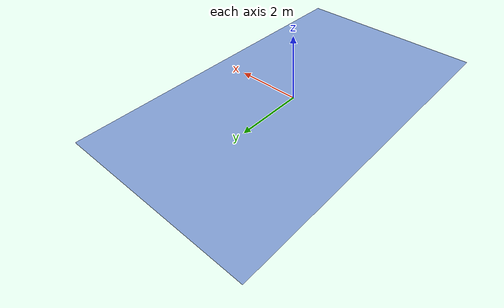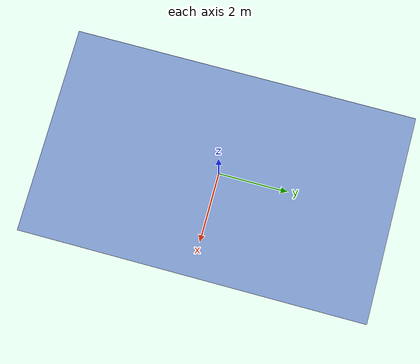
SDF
<?xml version='1.0'?>
<sdf version='1.5'>
  <model name='exploration_area'>
    <link name='link'>
      <pose frame=''>0 0 0 0 -0 0</pose>
      <inertial>
        <mass>1</mass>
        <inertia>
          <ixx>0.145833</ixx>
          <ixy>0</ixy>
          <ixz>0</ixz>
          <iyy>0.145833</iyy>
          <iyz>0</iyz>
          <izz>0.125</izz>
        </inertia>
        <pose frame=''>0 0 0 0 -0 0</pose>
      </inertial>
      <self_collide>0</self_collide>
      <kinematic>0</kinematic>
      <gravity>1</gravity>
      <visual name='visual'>
        <geometry>
          <box>
		<size>6 10 .005</size>
          </box>
        </geometry>
        <material>
          <script>
            <name>Gazebo/blue</name>
            <uri>file://media/materials/scripts/gazebo.material</uri>
          </script>
          <ambient>0.3 0.3 0.3 1</ambient>
          <diffuse>0.2 0.7 0.7 1</diffuse>
          <specular>0.01 0.01 0.01 1</specular>
          <emissive>0.2 0 0.7 1</emissive>
          <shader type='vertex'>
            <normal_map>__default__</normal_map>
          </shader>
        </material>
        <pose frame=''>0 0 0 0 -0 0</pose>
        <cast_shadows>1</cast_shadows>
        <transparency>0.5</transparency>
      </visual>
    </link>
    <static>0</static>
    <allow_auto_disable>1</allow_auto_disable>
  </model>
</sdf>
